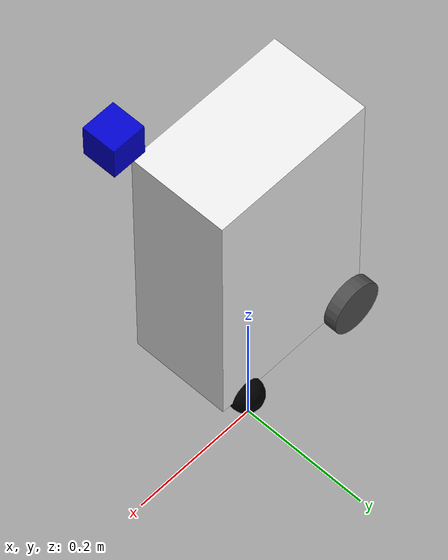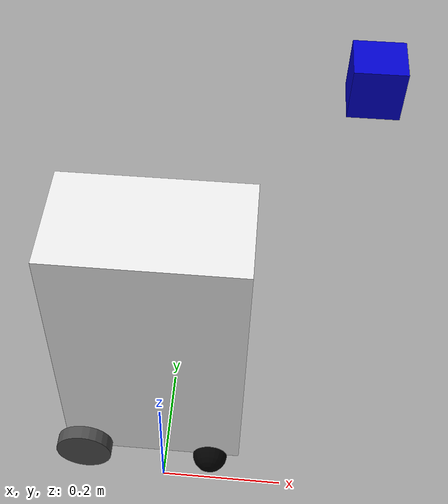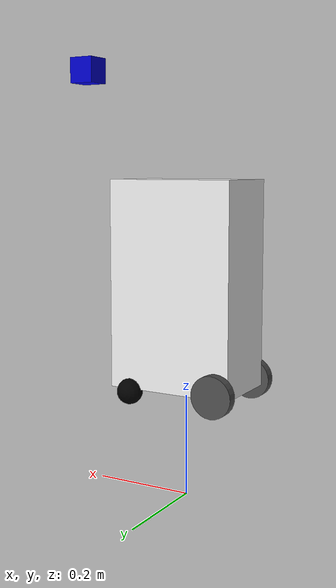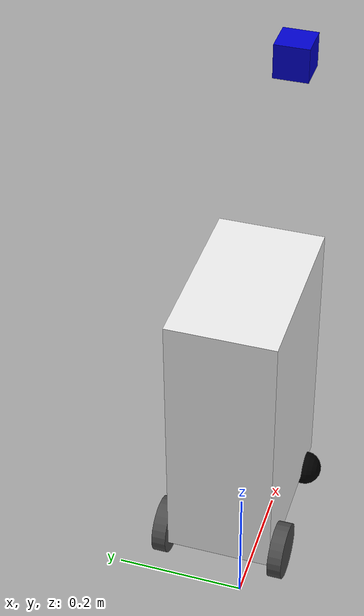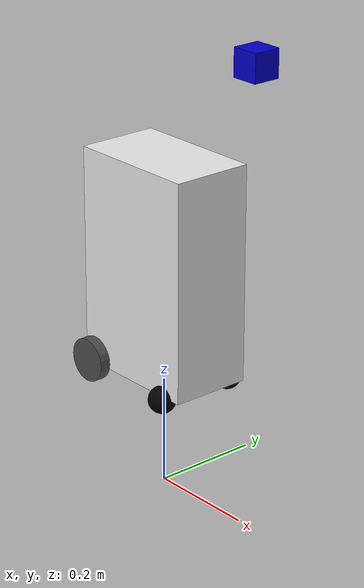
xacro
<?xml version="1.0"?>
<robot name="differential_wheeled_robot" xmlns:xacro="http://www.ros.org/wiki/xacro">

  <xacro:include filename="$(find diff_wheeled_robot_gazebo)/urdf/wheel.urdf.xacro" />

  <!-- Defining the colors used in this robot -->
  <material
    name="Black">
    <color rgba="0.0 0.0 0.0 1.0" />
  </material>

  <material name="Red">
    <color rgba="0.8 0.0 0.0 1.0" />
  </material>

  <material name="White">
    <color rgba="1.0 1.0 1.0 1.0" />
  </material>

  <material name="Blue">
    <color rgba="0.0 0.0 0.8 1.0" />
  </material>

  <!-- xacro:PROPERTY LIST -->
  <!--All
  units in m-kg-s-radians unit system -->
  <xacro:property name="M_PI"
    value="3.1415926535897931" />
  <xacro:property name="M_PI_2" value="1.570796327" />
  <xacro:property
    name="DEG_TO_RAD" value="0.017453293" />

  <!-- Main body radius and height -->
  <!-- Main Body Cylinder base   -->
  <xacro:property name="base_height" value="0.4" />
  <xacro:property
    name="base_length" value="0.25" />
  <xacro:property name="base_width" value="0.15" />
  <xacro:property
    name="base_mass" value="1" /> <!-- in kg-->

  <!-- caster wheel radius and height -->
  <!-- caster wheel mass -->
  <xacro:property name="caster_f_radius" value="0.025" />
  <xacro:property
    name="caster_f_mass" value="0.5" />
  <!-- caster wheel radius and height -->
  <!-- caster wheel mass -->
  <xacro:property name="caster_b_radius" value="0.025" />
  <xacro:property
    name="caster_b_mass" value="0.5" /> <!-- Wheels -->
  <xacro:property name="wheel_radius" value="0.04" />
  <xacro:property
    name="wheel_height" value="0.02" />
  <xacro:property name="wheel_mass" value="2.5" /> <!-- in kg-->

  <xacro:property
    name="base_x_origin_to_wheel_origin" value="0.1" />
  <xacro:property
    name="base_y_origin_to_wheel_origin" value="0.085" />
  <xacro:property
    name="base_z_origin_to_wheel_origin" value="-0.38" />

  <!-- Hokuyo Laser scanner -->
  <xacro:property name="hokuyo_size"
    value="0.05" />

  <!-- Macro for calculating inertia of cylinder -->
  <xacro:macro name="cylinder_inertia" params="m r h">
    <inertia ixx="${m*(3*r*r+h*h)/12}" ixy="0" ixz="0"
      iyy="${m*(3*r*r+h*h)/12}" iyz="0"
      izz="${m*r*r/2}" />
  </xacro:macro>

  <!-- BASE-FOOTPRINT -->
  <!-- base_footprint is a fictitious link(frame) that is on the ground right below base_link origin -->
  <link name="base_footprint">
    <inertial>
      <mass value="0.0001" />
      <origin xyz="0 0 0" />
      <inertia ixx="0.0001" ixy="0.0" ixz="0.0"
        iyy="0.0001" iyz="0.0"
        izz="0.0001" />
    </inertial>
    <visual>
      <origin xyz="0 0 0" rpy="0 0 0" />
      <geometry>
        <box size="0.001 0.001 0.001" />
      </geometry>
    </visual>
  </link>

  <gazebo
    reference="base_footprint">
    <turnGravityOff>false</turnGravityOff>
  </gazebo>

  <joint name="base_footprint_joint" type="fixed">
    <origin xyz="0 0 ${wheel_radius - base_z_origin_to_wheel_origin}" rpy="0 0 0" />
    <parent link="base_footprint" />
    <child link="base_link" />
  </joint>

  <!-- BASE-LINK -->
  <!--Actual
  body/chassis of the robot-->
  <link name="base_link">
    <visual>
      <origin xyz="0 0 0" rpy="0 0 0" />
      <geometry>
        <box size="${base_length} ${base_width} ${base_height}" />
      </geometry>
      <material name="white" />
    </visual>
    <collision>
      <origin xyz="0 0 0" rpy="0 0 0" />
      <geometry>
        <box size="${base_length-0.5} ${base_width-0.5} ${base_height}" />
      </geometry>
    </collision>
    <xacro:solid_cuboid_inertial rpy="0 0 0" xyz="0 0 0" mass="${base_mass}" x="${base_length}"
      y="${base_width}" z="${base_height}" />
  </link>

  <gazebo reference="base_link">
    <material>Gazebo/White</material>
    <turnGravityOff>false</turnGravityOff>
  </gazebo>

  <!--Caster
  front  -->
  <link name="caster_front_link">
    <visual>
      <origin xyz="0 0.0 0" rpy="0 0 0" />
      <geometry>
        <sphere radius="${caster_f_radius}" />
      </geometry>
      <material name="Black" />
    </visual>
    <collision>
      <geometry>
        <sphere radius="${caster_f_radius}" />
      </geometry>
      <origin xyz="0 0.0 0" rpy="0 0 0" />
    </collision>
    <inertial>
      <mass value="${caster_f_mass}" />
      <origin xyz="0 0 0" />
      <inertia ixx="0.001" ixy="0.0" ixz="0.0"
        iyy="0.001" iyz="0.0"
        izz="0.001" />
    </inertial>
  </link>

  <joint name="caster_front_joint" type="fixed">
    <parent link="base_link" />
    <child link="caster_front_link" />
    <origin xyz="${base_length/3} ${base_width/2} ${-0.015+base_z_origin_to_wheel_origin/2}"
      rpy="${-M_PI/2} 0 0" />
    <axis xyz="0 0 2" />
  </joint>

  <gazebo reference="caster_front_link">
    <turnGravityOff>false</turnGravityOff>
    <mu1 value="0.0" />
    <mu2 value="0.0" />
  </gazebo>

  <!--Caster
  back  -->
  <link name="caster_back_link">
    <visual>
      <origin xyz="0.0 0.0 0 " rpy="0 0 0" />
      <geometry>
        <sphere radius="${caster_b_radius}" />
      </geometry>
      <material name="Black" />
    </visual>

    <collision>
      <geometry>
        <sphere radius="${caster_f_radius}" />
      </geometry>
      <origin xyz="0 0.0 0 " rpy="0 0 0" />
    </collision>

    <inertial>
      <mass value="${caster_b_mass}" />
      <origin xyz="0 0 0" />
      <inertia ixx="0.001" ixy="0.0" ixz="0.0"
        iyy="0.001" iyz="0.0"
        izz="0.001" />
    </inertial>
  </link>

  <joint name="caster_back_joint" type="fixed">
    <parent link="base_link" />
    <child link="caster_back_link" />
    <origin xyz="${base_length/3} ${-base_width/2} ${-0.015+base_z_origin_to_wheel_origin/2}"
      rpy="${-M_PI/2} 0 0" />
    <axis xyz="0 0 1" />
  </joint>

  <gazebo reference="caster_back_link">
    <turnGravityOff>false</turnGravityOff>
    <mu1 value="0.0" />
    <mu2 value="0.0" />
  </gazebo>

  <!-- Wheel Definitions -->
  <xacro:wheel fb="front" lr="right"
    parent="base_link" translateX="-1" translateY="-1" flipY="-1" />
  <xacro:wheel fb="front"
    lr="left" parent="base_link" translateX="-1" translateY="1" flipY="-1" />
  <!-- SENSORS -->

  <!-- hokuyo -->
  <link
    name="hokuyo_link">
    <visual>
      <origin xyz="0 0 0" rpy="0 0 0" />
      <geometry>
        <box size="${hokuyo_size} ${hokuyo_size} ${hokuyo_size}" />
      </geometry>
      <material name="Blue" />
    </visual>
  </link>
  <joint name="hokuyo_joint" type="fixed">
    <origin xyz="${base_length - hokuyo_size/2} 0 ${base_height+hokuyo_size/4}" rpy="0 0 0" />
    <parent link="base_link" />
    <child link="hokuyo_link" />
  </joint>
  <gazebo reference="hokuyo_link">
    <material>Gazebo/Blue</material>
    <turnGravityOff>false</turnGravityOff>
    <sensor type="ray" name="head_hokuyo_sensor">
      <pose>${hokuyo_size/2} 0 0 0 0 0</pose>
      <visualize>true</visualize>
      <update_rate>40</update_rate>
      <ray>
        <scan>
          <horizontal>
            <samples>720</samples>
            <resolution>1</resolution>
            <min_angle>-1.570796</min_angle>
            <max_angle>1.570796</max_angle>
          </horizontal>
        </scan>
        <range>
          <min>0.10</min>
          <max>10.0</max>
          <resolution>0.001</resolution>
        </range>
      </ray>
      <plugin name="gazebo_ros_head_hokuyo_controller" filename="libgazebo_ros_laser.so">
        <topicName>/scan</topicName>
        <frameName>lidar</frameName>
      </plugin>
    </sensor>
  </gazebo>

  <!-- Differential drive controller  -->
  <gazebo>
    <plugin name="differential_drive_controller" filename="libgazebo_ros_diff_drive.so">
      <rosDebugLevel>Debug</rosDebugLevel>
      <publishWheelTF>true</publishWheelTF>
      <robotNamespace>/</robotNamespace>
      <publishTf>1</publishTf>
      <publishWheelJointState>true</publishWheelJointState>
      <alwaysOn>true</alwaysOn>
      <updateRate>100.0</updateRate>
      <leftJoint>front_left_wheel_joint</leftJoint>
      <rightJoint>front_right_wheel_joint</rightJoint>
      <wheelSeparation>${2*base_length}</wheelSeparation>
      <wheelDiameter>${2*wheel_radius}</wheelDiameter>
      <broadcastTF>1</broadcastTF>
      <wheelTorque>30</wheelTorque>
      <wheelAcceleration>1.8</wheelAcceleration>
      <commandTopic>cmd_vel</commandTopic>
      <odometryFrame>odom</odometryFrame>
      <odometryTopic>odom</odometryTopic>
      <robotBaseFrame>base_link</robotBaseFrame>
    </plugin>
  </gazebo>

</robot>

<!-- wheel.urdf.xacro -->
<robot name="wheel" xmlns:xacro="http://www.ros.org/xacro">

  <!-- Wheels -->
  <xacro:property name="wheel_radius" value="0.04" />
  <xacro:property name="wheel_height" value="0.02" />
  <xacro:property name="wheel_mass" value="2.5" /> <!-- in kg-->

  <xacro:property name="base_x_origin_to_wheel_origin" value="0.1" />
  <xacro:property name="base_y_origin_to_wheel_origin" value="0.085" />
  <xacro:property name="base_z_origin_to_wheel_origin" value="0.0" />

  <xacro:macro name="cylinder_inertia" params="m r h">
    <inertia ixx="${m*(3*r*r+h*h)/12}" ixy="0" ixz="0"
      iyy="${m*(3*r*r+h*h)/12}" iyz="0"
      izz="${m*r*r/2}" />
  </xacro:macro>

  <!-- Inertial for solid cuboid with dimensions x y z  -->
  <xacro:macro name="solid_cuboid_inertial" params="rpy xyz mass x y z">
    <inertial>
      <origin rpy="${rpy}" xyz="${xyz}" />
      <mass value="${mass}" />
      <inertia
        ixx="${mass * (y * y + z * z) / 12.0}" ixy="0.0" ixz="0.0"
        iyy="${mass * (x * x + z * z) / 12.0}" iyz="0.0"
        izz="${mass * (x * x + y * y) / 12.0}" />
    </inertial>
  </xacro:macro>

  <!--fb
  : front, back ; lr: left, right -->
  <xacro:macro name="wheel" params="fb lr parent translateX translateY flipY">
    <link name="${fb}_${lr}_wheel">
      <visual>
        <origin xyz="0 0 0" rpy="${flipY*M_PI/2} 0  0 " />
        <geometry>
          <cylinder length="${wheel_height}" radius="${wheel_radius}" />
        </geometry>
        <material name="DarkGray" />
      </visual>
      <collision>
        <origin xyz="0 0 0" rpy="${flipY*M_PI/2} 0 0 " />
        <geometry>
          <cylinder length="${wheel_height}" radius="${wheel_radius}" />
        </geometry>
      </collision>
      <inertial>
        <mass value="${wheel_mass}" />
        <origin xyz="0 0 0" />
        <xacro:cylinder_inertia m="${wheel_mass}" r="${wheel_radius}" h="${wheel_height}" />
      </inertial>
    </link>

    <gazebo reference="${fb}_${lr}_wheel">
      <mu1 value="1.0" />
      <mu2 value="1.0" />
      <kp value="10000000.0" />
      <kd value="1.0" />
      <fdir1 value="1 0 0" />
      <material>Gazebo/Grey</material>
      <turnGravityOff>false</turnGravityOff>
    </gazebo>

    <joint name="${fb}_${lr}_wheel_joint" type="continuous">
      <parent link="${parent}" />
      <child link="${fb}_${lr}_wheel" />
      <origin
        xyz="${translateX * base_x_origin_to_wheel_origin} ${translateY * base_y_origin_to_wheel_origin} ${base_z_origin_to_wheel_origin/2}"
        rpy="0 0 0" />
      <axis xyz="0 1 0" rpy="0  0" />
      <limit effort="100" velocity="100" />
      <joint_properties damping="0.0" friction="0.0" />
    </joint>

    <!-- Transmission is important to link the joints and the controller -->
    <transmission name="${fb}_${lr}_wheel_joint_trans">
      <type>transmission_interface/SimpleTransmission</type>
      <joint name="${fb}_${lr}_wheel_joint" />
      <actuator name="${fb}_${lr}_wheel_joint_motor">
        <hardwareInterface>EffortJointInterface</hardwareInterface>
        <mechanicalReduction>1</mechanicalReduction>
      </actuator>
    </transmission>

  </xacro:macro>
</robot>
